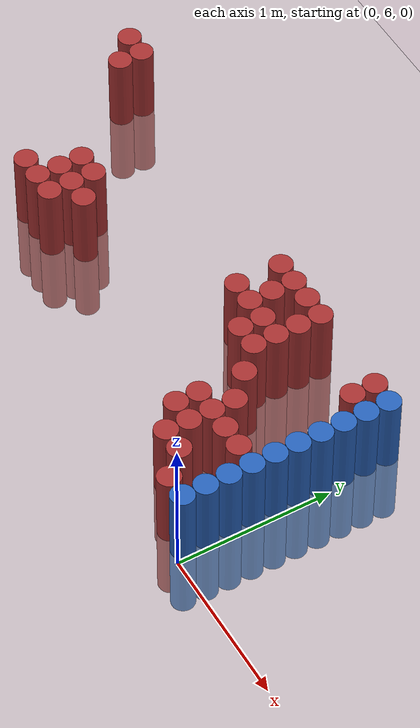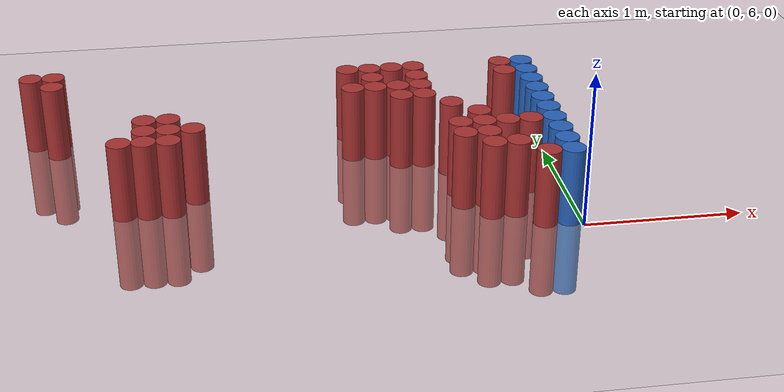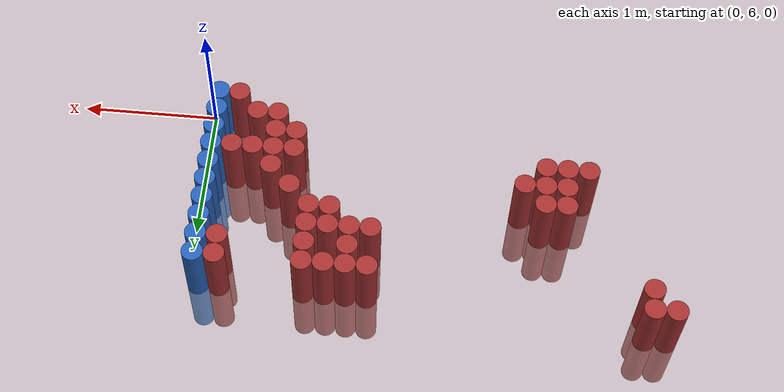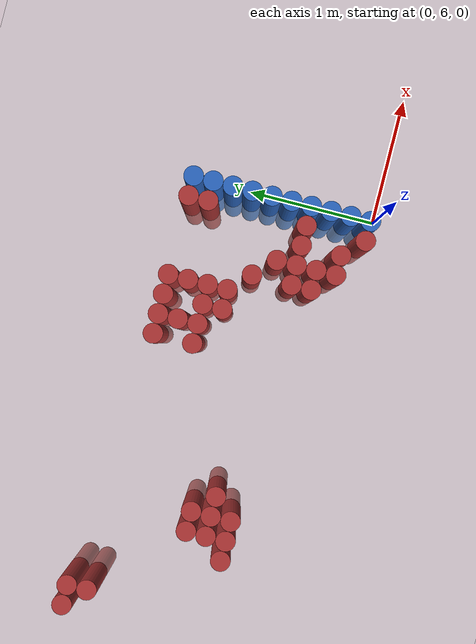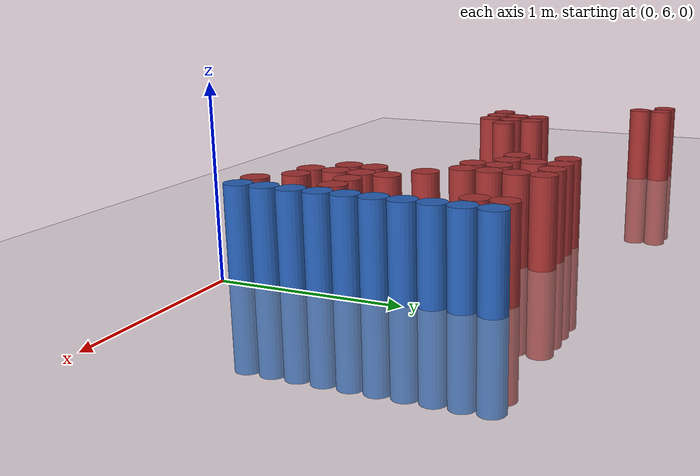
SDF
<sdf version="1.6">
 <world name="default">
  <model name="ground_plane">
   <static>1</static>
   <link name="link">
    <collision name="collision">
     <geometry><plane><normal>0 0 1</normal><size>100 100</size></plane></geometry>
     <surface><friction><ode><mu>100</mu><mu2>50</mu2></ode></friction></surface>
    </collision>
    <visual name="visual">
     <cast_shadows>0</cast_shadows>
     <geometry><plane><normal>0 0 1</normal><size>100 100</size></plane></geometry>
     <material>
      <script><uri>file://media/materials/scripts/gazebo.material</uri><name>Gazebo/Grey</name></script>
     </material>
    </visual>
   </link>
  </model>
  <model name="unit_cylinder_166">
   <static>1</static>
   <pose>-3.375000 7.575000 0.000000 0.000000 0.000000 0.000000</pose>
   <link name="link">
    <inertial>
     <mass>1</mass>
     <inertia><ixx>0.145833</ixx><ixy>0</ixy><ixz>0</ixz><iyy>0.145833</iyy><iyz>0</iyz><izz>0.125</izz></inertia>
    </inertial>
    <collision name="collision">
     <geometry><cylinder><radius>0.075000</radius><length>1</length></cylinder></geometry>
    </collision>
    <visual name="visual">
     <geometry><cylinder><radius>0.075000</radius><length>1</length></cylinder></geometry>
     <material>
      <ambient>0.648000 0.192000 0.192000 1</ambient>
      <diffuse>0.648000 0.192000 0.192000 1</diffuse>
     </material>
     <material>
      <script><name>Gazebo/Grey</name><uri>file://media/materials/scripts/gazebo.material</uri></script>
     </material>
    </visual>
   </link>
  </model>
  <model name="unit_cylinder_172">
   <static>1</static>
   <pose>-3.225000 7.425000 0.000000 0.000000 0.000000 0.000000</pose>
   <link name="link">
    <inertial>
     <mass>1</mass>
     <inertia><ixx>0.145833</ixx><ixy>0</ixy><ixz>0</ixz><iyy>0.145833</iyy><iyz>0</iyz><izz>0.125</izz></inertia>
    </inertial>
    <collision name="collision">
     <geometry><cylinder><radius>0.075000</radius><length>1</length></cylinder></geometry>
    </collision>
    <visual name="visual">
     <geometry><cylinder><radius>0.075000</radius><length>1</length></cylinder></geometry>
     <material>
      <ambient>0.648000 0.192000 0.192000 1</ambient>
      <diffuse>0.648000 0.192000 0.192000 1</diffuse>
     </material>
     <material>
      <script><name>Gazebo/Grey</name><uri>file://media/materials/scripts/gazebo.material</uri></script>
     </material>
    </visual>
   </link>
  </model>
  <model name="unit_cylinder_173">
   <static>1</static>
   <pose>-3.225000 7.575000 0.000000 0.000000 0.000000 0.000000</pose>
   <link name="link">
    <inertial>
     <mass>1</mass>
     <inertia><ixx>0.145833</ixx><ixy>0</ixy><ixz>0</ixz><iyy>0.145833</iyy><iyz>0</iyz><izz>0.125</izz></inertia>
    </inertial>
    <collision name="collision">
     <geometry><cylinder><radius>0.075000</radius><length>1</length></cylinder></geometry>
    </collision>
    <visual name="visual">
     <geometry><cylinder><radius>0.075000</radius><length>1</length></cylinder></geometry>
     <material>
      <ambient>0.648000 0.192000 0.192000 1</ambient>
      <diffuse>0.648000 0.192000 0.192000 1</diffuse>
     </material>
     <material>
      <script><name>Gazebo/Grey</name><uri>file://media/materials/scripts/gazebo.material</uri></script>
     </material>
    </visual>
   </link>
  </model>
  <model name="unit_cylinder_184">
   <static>1</static>
   <pose>-2.775000 6.525000 0.000000 0.000000 0.000000 0.000000</pose>
   <link name="link">
    <inertial>
     <mass>1</mass>
     <inertia><ixx>0.145833</ixx><ixy>0</ixy><ixz>0</ixz><iyy>0.145833</iyy><iyz>0</iyz><izz>0.125</izz></inertia>
    </inertial>
    <collision name="collision">
     <geometry><cylinder><radius>0.075000</radius><length>1</length></cylinder></geometry>
    </collision>
    <visual name="visual">
     <geometry><cylinder><radius>0.075000</radius><length>1</length></cylinder></geometry>
     <material>
      <ambient>0.648000 0.192000 0.192000 1</ambient>
      <diffuse>0.648000 0.192000 0.192000 1</diffuse>
     </material>
     <material>
      <script><name>Gazebo/Grey</name><uri>file://media/materials/scripts/gazebo.material</uri></script>
     </material>
    </visual>
   </link>
  </model>
  <model name="unit_cylinder_188">
   <static>1</static>
   <pose>-2.625000 6.525000 0.000000 0.000000 0.000000 0.000000</pose>
   <link name="link">
    <inertial>
     <mass>1</mass>
     <inertia><ixx>0.145833</ixx><ixy>0</ixy><ixz>0</ixz><iyy>0.145833</iyy><iyz>0</iyz><izz>0.125</izz></inertia>
    </inertial>
    <collision name="collision">
     <geometry><cylinder><radius>0.075000</radius><length>1</length></cylinder></geometry>
    </collision>
    <visual name="visual">
     <geometry><cylinder><radius>0.075000</radius><length>1</length></cylinder></geometry>
     <material>
      <ambient>0.648000 0.192000 0.192000 1</ambient>
      <diffuse>0.648000 0.192000 0.192000 1</diffuse>
     </material>
     <material>
      <script><name>Gazebo/Grey</name><uri>file://media/materials/scripts/gazebo.material</uri></script>
     </material>
    </visual>
   </link>
  </model>
  <model name="unit_cylinder_189">
   <static>1</static>
   <pose>-2.625000 6.675000 0.000000 0.000000 0.000000 0.000000</pose>
   <link name="link">
    <inertial>
     <mass>1</mass>
     <inertia><ixx>0.145833</ixx><ixy>0</ixy><ixz>0</ixz><iyy>0.145833</iyy><iyz>0</iyz><izz>0.125</izz></inertia>
    </inertial>
    <collision name="collision">
     <geometry><cylinder><radius>0.075000</radius><length>1</length></cylinder></geometry>
    </collision>
    <visual name="visual">
     <geometry><cylinder><radius>0.075000</radius><length>1</length></cylinder></geometry>
     <material>
      <ambient>0.648000 0.192000 0.192000 1</ambient>
      <diffuse>0.648000 0.192000 0.192000 1</diffuse>
     </material>
     <material>
      <script><name>Gazebo/Grey</name><uri>file://media/materials/scripts/gazebo.material</uri></script>
     </material>
    </visual>
   </link>
  </model>
  <model name="unit_cylinder_190">
   <static>1</static>
   <pose>-2.625000 6.825000 0.000000 0.000000 0.000000 0.000000</pose>
   <link name="link">
    <inertial>
     <mass>1</mass>
     <inertia><ixx>0.145833</ixx><ixy>0</ixy><ixz>0</ixz><iyy>0.145833</iyy><iyz>0</iyz><izz>0.125</izz></inertia>
    </inertial>
    <collision name="collision">
     <geometry><cylinder><radius>0.075000</radius><length>1</length></cylinder></geometry>
    </collision>
    <visual name="visual">
     <geometry><cylinder><radius>0.075000</radius><length>1</length></cylinder></geometry>
     <material>
      <ambient>0.648000 0.192000 0.192000 1</ambient>
      <diffuse>0.648000 0.192000 0.192000 1</diffuse>
     </material>
     <material>
      <script><name>Gazebo/Grey</name><uri>file://media/materials/scripts/gazebo.material</uri></script>
     </material>
    </visual>
   </link>
  </model>
  <model name="unit_cylinder_195">
   <static>1</static>
   <pose>-2.475000 6.525000 0.000000 0.000000 0.000000 0.000000</pose>
   <link name="link">
    <inertial>
     <mass>1</mass>
     <inertia><ixx>0.145833</ixx><ixy>0</ixy><ixz>0</ixz><iyy>0.145833</iyy><iyz>0</iyz><izz>0.125</izz></inertia>
    </inertial>
    <collision name="collision">
     <geometry><cylinder><radius>0.075000</radius><length>1</length></cylinder></geometry>
    </collision>
    <visual name="visual">
     <geometry><cylinder><radius>0.075000</radius><length>1</length></cylinder></geometry>
     <material>
      <ambient>0.648000 0.192000 0.192000 1</ambient>
      <diffuse>0.648000 0.192000 0.192000 1</diffuse>
     </material>
     <material>
      <script><name>Gazebo/Grey</name><uri>file://media/materials/scripts/gazebo.material</uri></script>
     </material>
    </visual>
   </link>
  </model>
  <model name="unit_cylinder_196">
   <static>1</static>
   <pose>-2.475000 6.675000 0.000000 0.000000 0.000000 0.000000</pose>
   <link name="link">
    <inertial>
     <mass>1</mass>
     <inertia><ixx>0.145833</ixx><ixy>0</ixy><ixz>0</ixz><iyy>0.145833</iyy><iyz>0</iyz><izz>0.125</izz></inertia>
    </inertial>
    <collision name="collision">
     <geometry><cylinder><radius>0.075000</radius><length>1</length></cylinder></geometry>
    </collision>
    <visual name="visual">
     <geometry><cylinder><radius>0.075000</radius><length>1</length></cylinder></geometry>
     <material>
      <ambient>0.648000 0.192000 0.192000 1</ambient>
      <diffuse>0.648000 0.192000 0.192000 1</diffuse>
     </material>
     <material>
      <script><name>Gazebo/Grey</name><uri>file://media/materials/scripts/gazebo.material</uri></script>
     </material>
    </visual>
   </link>
  </model>
  <model name="unit_cylinder_197">
   <static>1</static>
   <pose>-2.475000 6.825000 0.000000 0.000000 0.000000 0.000000</pose>
   <link name="link">
    <inertial>
     <mass>1</mass>
     <inertia><ixx>0.145833</ixx><ixy>0</ixy><ixz>0</ixz><iyy>0.145833</iyy><iyz>0</iyz><izz>0.125</izz></inertia>
    </inertial>
    <collision name="collision">
     <geometry><cylinder><radius>0.075000</radius><length>1</length></cylinder></geometry>
    </collision>
    <visual name="visual">
     <geometry><cylinder><radius>0.075000</radius><length>1</length></cylinder></geometry>
     <material>
      <ambient>0.648000 0.192000 0.192000 1</ambient>
      <diffuse>0.648000 0.192000 0.192000 1</diffuse>
     </material>
     <material>
      <script><name>Gazebo/Grey</name><uri>file://media/materials/scripts/gazebo.material</uri></script>
     </material>
    </visual>
   </link>
  </model>
  <model name="unit_cylinder_199">
   <static>1</static>
   <pose>-2.325000 6.675000 0.000000 0.000000 0.000000 0.000000</pose>
   <link name="link">
    <inertial>
     <mass>1</mass>
     <inertia><ixx>0.145833</ixx><ixy>0</ixy><ixz>0</ixz><iyy>0.145833</iyy><iyz>0</iyz><izz>0.125</izz></inertia>
    </inertial>
    <collision name="collision">
     <geometry><cylinder><radius>0.075000</radius><length>1</length></cylinder></geometry>
    </collision>
    <visual name="visual">
     <geometry><cylinder><radius>0.075000</radius><length>1</length></cylinder></geometry>
     <material>
      <ambient>0.648000 0.192000 0.192000 1</ambient>
      <diffuse>0.648000 0.192000 0.192000 1</diffuse>
     </material>
     <material>
      <script><name>Gazebo/Grey</name><uri>file://media/materials/scripts/gazebo.material</uri></script>
     </material>
    </visual>
   </link>
  </model>
  <model name="unit_cylinder_212">
   <static>1</static>
   <pose>-1.275000 7.125000 0.000000 0.000000 0.000000 0.000000</pose>
   <link name="link">
    <inertial>
     <mass>1</mass>
     <inertia><ixx>0.145833</ixx><ixy>0</ixy><ixz>0</ixz><iyy>0.145833</iyy><iyz>0</iyz><izz>0.125</izz></inertia>
    </inertial>
    <collision name="collision">
     <geometry><cylinder><radius>0.075000</radius><length>1</length></cylinder></geometry>
    </collision>
    <visual name="visual">
     <geometry><cylinder><radius>0.075000</radius><length>1</length></cylinder></geometry>
     <material>
      <ambient>0.648000 0.192000 0.192000 1</ambient>
      <diffuse>0.648000 0.192000 0.192000 1</diffuse>
     </material>
     <material>
      <script><name>Gazebo/Grey</name><uri>file://media/materials/scripts/gazebo.material</uri></script>
     </material>
    </visual>
   </link>
  </model>
  <model name="unit_cylinder_213">
   <static>1</static>
   <pose>-1.275000 7.425000 0.000000 0.000000 0.000000 0.000000</pose>
   <link name="link">
    <inertial>
     <mass>1</mass>
     <inertia><ixx>0.145833</ixx><ixy>0</ixy><ixz>0</ixz><iyy>0.145833</iyy><iyz>0</iyz><izz>0.125</izz></inertia>
    </inertial>
    <collision name="collision">
     <geometry><cylinder><radius>0.075000</radius><length>1</length></cylinder></geometry>
    </collision>
    <visual name="visual">
     <geometry><cylinder><radius>0.075000</radius><length>1</length></cylinder></geometry>
     <material>
      <ambient>0.648000 0.192000 0.192000 1</ambient>
      <diffuse>0.648000 0.192000 0.192000 1</diffuse>
     </material>
     <material>
      <script><name>Gazebo/Grey</name><uri>file://media/materials/scripts/gazebo.material</uri></script>
     </material>
    </visual>
   </link>
  </model>
  <model name="unit_cylinder_214">
   <static>1</static>
   <pose>-1.125000 7.125000 0.000000 0.000000 0.000000 0.000000</pose>
   <link name="link">
    <inertial>
     <mass>1</mass>
     <inertia><ixx>0.145833</ixx><ixy>0</ixy><ixz>0</ixz><iyy>0.145833</iyy><iyz>0</iyz><izz>0.125</izz></inertia>
    </inertial>
    <collision name="collision">
     <geometry><cylinder><radius>0.075000</radius><length>1</length></cylinder></geometry>
    </collision>
    <visual name="visual">
     <geometry><cylinder><radius>0.075000</radius><length>1</length></cylinder></geometry>
     <material>
      <ambient>0.648000 0.192000 0.192000 1</ambient>
      <diffuse>0.648000 0.192000 0.192000 1</diffuse>
     </material>
     <material>
      <script><name>Gazebo/Grey</name><uri>file://media/materials/scripts/gazebo.material</uri></script>
     </material>
    </visual>
   </link>
  </model>
  <model name="unit_cylinder_215">
   <static>1</static>
   <pose>-1.125000 7.275000 0.000000 0.000000 0.000000 0.000000</pose>
   <link name="link">
    <inertial>
     <mass>1</mass>
     <inertia><ixx>0.145833</ixx><ixy>0</ixy><ixz>0</ixz><iyy>0.145833</iyy><iyz>0</iyz><izz>0.125</izz></inertia>
    </inertial>
    <collision name="collision">
     <geometry><cylinder><radius>0.075000</radius><length>1</length></cylinder></geometry>
    </collision>
    <visual name="visual">
     <geometry><cylinder><radius>0.075000</radius><length>1</length></cylinder></geometry>
     <material>
      <ambient>0.648000 0.192000 0.192000 1</ambient>
      <diffuse>0.648000 0.192000 0.192000 1</diffuse>
     </material>
     <material>
      <script><name>Gazebo/Grey</name><uri>file://media/materials/scripts/gazebo.material</uri></script>
     </material>
    </visual>
   </link>
  </model>
  <model name="unit_cylinder_216">
   <static>1</static>
   <pose>-1.125000 7.425000 0.000000 0.000000 0.000000 0.000000</pose>
   <link name="link">
    <inertial>
     <mass>1</mass>
     <inertia><ixx>0.145833</ixx><ixy>0</ixy><ixz>0</ixz><iyy>0.145833</iyy><iyz>0</iyz><izz>0.125</izz></inertia>
    </inertial>
    <collision name="collision">
     <geometry><cylinder><radius>0.075000</radius><length>1</length></cylinder></geometry>
    </collision>
    <visual name="visual">
     <geometry><cylinder><radius>0.075000</radius><length>1</length></cylinder></geometry>
     <material>
      <ambient>0.648000 0.192000 0.192000 1</ambient>
      <diffuse>0.648000 0.192000 0.192000 1</diffuse>
     </material>
     <material>
      <script><name>Gazebo/Grey</name><uri>file://media/materials/scripts/gazebo.material</uri></script>
     </material>
    </visual>
   </link>
  </model>
  <model name="unit_cylinder_218">
   <static>1</static>
   <pose>-0.975000 6.975000 0.000000 0.000000 0.000000 0.000000</pose>
   <link name="link">
    <inertial>
     <mass>1</mass>
     <inertia><ixx>0.145833</ixx><ixy>0</ixy><ixz>0</ixz><iyy>0.145833</iyy><iyz>0</iyz><izz>0.125</izz></inertia>
    </inertial>
    <collision name="collision">
     <geometry><cylinder><radius>0.075000</radius><length>1</length></cylinder></geometry>
    </collision>
    <visual name="visual">
     <geometry><cylinder><radius>0.075000</radius><length>1</length></cylinder></geometry>
     <material>
      <ambient>0.648000 0.192000 0.192000 1</ambient>
      <diffuse>0.648000 0.192000 0.192000 1</diffuse>
     </material>
     <material>
      <script><name>Gazebo/Grey</name><uri>file://media/materials/scripts/gazebo.material</uri></script>
     </material>
    </visual>
   </link>
  </model>
  <model name="unit_cylinder_219">
   <static>1</static>
   <pose>-0.975000 7.125000 0.000000 0.000000 0.000000 0.000000</pose>
   <link name="link">
    <inertial>
     <mass>1</mass>
     <inertia><ixx>0.145833</ixx><ixy>0</ixy><ixz>0</ixz><iyy>0.145833</iyy><iyz>0</iyz><izz>0.125</izz></inertia>
    </inertial>
    <collision name="collision">
     <geometry><cylinder><radius>0.075000</radius><length>1</length></cylinder></geometry>
    </collision>
    <visual name="visual">
     <geometry><cylinder><radius>0.075000</radius><length>1</length></cylinder></geometry>
     <material>
      <ambient>0.648000 0.192000 0.192000 1</ambient>
      <diffuse>0.648000 0.192000 0.192000 1</diffuse>
     </material>
     <material>
      <script><name>Gazebo/Grey</name><uri>file://media/materials/scripts/gazebo.material</uri></script>
     </material>
    </visual>
   </link>
  </model>
  <model name="unit_cylinder_220">
   <static>1</static>
   <pose>-0.975000 7.425000 0.000000 0.000000 0.000000 0.000000</pose>
   <link name="link">
    <inertial>
     <mass>1</mass>
     <inertia><ixx>0.145833</ixx><ixy>0</ixy><ixz>0</ixz><iyy>0.145833</iyy><iyz>0</iyz><izz>0.125</izz></inertia>
    </inertial>
    <collision name="collision">
     <geometry><cylinder><radius>0.075000</radius><length>1</length></cylinder></geometry>
    </collision>
    <visual name="visual">
     <geometry><cylinder><radius>0.075000</radius><length>1</length></cylinder></geometry>
     <material>
      <ambient>0.648000 0.192000 0.192000 1</ambient>
      <diffuse>0.648000 0.192000 0.192000 1</diffuse>
     </material>
     <material>
      <script><name>Gazebo/Grey</name><uri>file://media/materials/scripts/gazebo.material</uri></script>
     </material>
    </visual>
   </link>
  </model>
  <model name="unit_cylinder_221">
   <static>1</static>
   <pose>-0.825000 6.975000 0.000000 0.000000 0.000000 0.000000</pose>
   <link name="link">
    <inertial>
     <mass>1</mass>
     <inertia><ixx>0.145833</ixx><ixy>0</ixy><ixz>0</ixz><iyy>0.145833</iyy><iyz>0</iyz><izz>0.125</izz></inertia>
    </inertial>
    <collision name="collision">
     <geometry><cylinder><radius>0.075000</radius><length>1</length></cylinder></geometry>
    </collision>
    <visual name="visual">
     <geometry><cylinder><radius>0.075000</radius><length>1</length></cylinder></geometry>
     <material>
      <ambient>0.648000 0.192000 0.192000 1</ambient>
      <diffuse>0.648000 0.192000 0.192000 1</diffuse>
     </material>
     <material>
      <script><name>Gazebo/Grey</name><uri>file://media/materials/scripts/gazebo.material</uri></script>
     </material>
    </visual>
   </link>
  </model>
  <model name="unit_cylinder_222">
   <static>1</static>
   <pose>-0.825000 7.125000 0.000000 0.000000 0.000000 0.000000</pose>
   <link name="link">
    <inertial>
     <mass>1</mass>
     <inertia><ixx>0.145833</ixx><ixy>0</ixy><ixz>0</ixz><iyy>0.145833</iyy><iyz>0</iyz><izz>0.125</izz></inertia>
    </inertial>
    <collision name="collision">
     <geometry><cylinder><radius>0.075000</radius><length>1</length></cylinder></geometry>
    </collision>
    <visual name="visual">
     <geometry><cylinder><radius>0.075000</radius><length>1</length></cylinder></geometry>
     <material>
      <ambient>0.648000 0.192000 0.192000 1</ambient>
      <diffuse>0.648000 0.192000 0.192000 1</diffuse>
     </material>
     <material>
      <script><name>Gazebo/Grey</name><uri>file://media/materials/scripts/gazebo.material</uri></script>
     </material>
    </visual>
   </link>
  </model>
  <model name="unit_cylinder_223">
   <static>1</static>
   <pose>-0.825000 7.275000 0.000000 0.000000 0.000000 0.000000</pose>
   <link name="link">
    <inertial>
     <mass>1</mass>
     <inertia><ixx>0.145833</ixx><ixy>0</ixy><ixz>0</ixz><iyy>0.145833</iyy><iyz>0</iyz><izz>0.125</izz></inertia>
    </inertial>
    <collision name="collision">
     <geometry><cylinder><radius>0.075000</radius><length>1</length></cylinder></geometry>
    </collision>
    <visual name="visual">
     <geometry><cylinder><radius>0.075000</radius><length>1</length></cylinder></geometry>
     <material>
      <ambient>0.648000 0.192000 0.192000 1</ambient>
      <diffuse>0.648000 0.192000 0.192000 1</diffuse>
     </material>
     <material>
      <script><name>Gazebo/Grey</name><uri>file://media/materials/scripts/gazebo.material</uri></script>
     </material>
    </visual>
   </link>
  </model>
  <model name="unit_cylinder_224">
   <static>1</static>
   <pose>-0.825000 7.425000 0.000000 0.000000 0.000000 0.000000</pose>
   <link name="link">
    <inertial>
     <mass>1</mass>
     <inertia><ixx>0.145833</ixx><ixy>0</ixy><ixz>0</ixz><iyy>0.145833</iyy><iyz>0</iyz><izz>0.125</izz></inertia>
    </inertial>
    <collision name="collision">
     <geometry><cylinder><radius>0.075000</radius><length>1</length></cylinder></geometry>
    </collision>
    <visual name="visual">
     <geometry><cylinder><radius>0.075000</radius><length>1</length></cylinder></geometry>
     <material>
      <ambient>0.648000 0.192000 0.192000 1</ambient>
      <diffuse>0.648000 0.192000 0.192000 1</diffuse>
     </material>
     <material>
      <script><name>Gazebo/Grey</name><uri>file://media/materials/scripts/gazebo.material</uri></script>
     </material>
    </visual>
   </link>
  </model>
  <model name="unit_cylinder_226">
   <static>1</static>
   <pose>-0.675000 6.375000 0.000000 0.000000 0.000000 0.000000</pose>
   <link name="link">
    <inertial>
     <mass>1</mass>
     <inertia><ixx>0.145833</ixx><ixy>0</ixy><ixz>0</ixz><iyy>0.145833</iyy><iyz>0</iyz><izz>0.125</izz></inertia>
    </inertial>
    <collision name="collision">
     <geometry><cylinder><radius>0.075000</radius><length>1</length></cylinder></geometry>
    </collision>
    <visual name="visual">
     <geometry><cylinder><radius>0.075000</radius><length>1</length></cylinder></geometry>
     <material>
      <ambient>0.648000 0.192000 0.192000 1</ambient>
      <diffuse>0.648000 0.192000 0.192000 1</diffuse>
     </material>
     <material>
      <script><name>Gazebo/Grey</name><uri>file://media/materials/scripts/gazebo.material</uri></script>
     </material>
    </visual>
   </link>
  </model>
  <model name="unit_cylinder_227">
   <static>1</static>
   <pose>-0.675000 6.525000 0.000000 0.000000 0.000000 0.000000</pose>
   <link name="link">
    <inertial>
     <mass>1</mass>
     <inertia><ixx>0.145833</ixx><ixy>0</ixy><ixz>0</ixz><iyy>0.145833</iyy><iyz>0</iyz><izz>0.125</izz></inertia>
    </inertial>
    <collision name="collision">
     <geometry><cylinder><radius>0.075000</radius><length>1</length></cylinder></geometry>
    </collision>
    <visual name="visual">
     <geometry><cylinder><radius>0.075000</radius><length>1</length></cylinder></geometry>
     <material>
      <ambient>0.648000 0.192000 0.192000 1</ambient>
      <diffuse>0.648000 0.192000 0.192000 1</diffuse>
     </material>
     <material>
      <script><name>Gazebo/Grey</name><uri>file://media/materials/scripts/gazebo.material</uri></script>
     </material>
    </visual>
   </link>
  </model>
  <model name="unit_cylinder_228">
   <static>1</static>
   <pose>-0.675000 6.825000 0.000000 0.000000 0.000000 0.000000</pose>
   <link name="link">
    <inertial>
     <mass>1</mass>
     <inertia><ixx>0.145833</ixx><ixy>0</ixy><ixz>0</ixz><iyy>0.145833</iyy><iyz>0</iyz><izz>0.125</izz></inertia>
    </inertial>
    <collision name="collision">
     <geometry><cylinder><radius>0.075000</radius><length>1</length></cylinder></geometry>
    </collision>
    <visual name="visual">
     <geometry><cylinder><radius>0.075000</radius><length>1</length></cylinder></geometry>
     <material>
      <ambient>0.648000 0.192000 0.192000 1</ambient>
      <diffuse>0.648000 0.192000 0.192000 1</diffuse>
     </material>
     <material>
      <script><name>Gazebo/Grey</name><uri>file://media/materials/scripts/gazebo.material</uri></script>
     </material>
    </visual>
   </link>
  </model>
  <model name="unit_cylinder_229">
   <static>1</static>
   <pose>-0.525000 6.225000 0.000000 0.000000 0.000000 0.000000</pose>
   <link name="link">
    <inertial>
     <mass>1</mass>
     <inertia><ixx>0.145833</ixx><ixy>0</ixy><ixz>0</ixz><iyy>0.145833</iyy><iyz>0</iyz><izz>0.125</izz></inertia>
    </inertial>
    <collision name="collision">
     <geometry><cylinder><radius>0.075000</radius><length>1</length></cylinder></geometry>
    </collision>
    <visual name="visual">
     <geometry><cylinder><radius>0.075000</radius><length>1</length></cylinder></geometry>
     <material>
      <ambient>0.648000 0.192000 0.192000 1</ambient>
      <diffuse>0.648000 0.192000 0.192000 1</diffuse>
     </material>
     <material>
      <script><name>Gazebo/Grey</name><uri>file://media/materials/scripts/gazebo.material</uri></script>
     </material>
    </visual>
   </link>
  </model>
  <model name="unit_cylinder_230">
   <static>1</static>
   <pose>-0.525000 6.375000 0.000000 0.000000 0.000000 0.000000</pose>
   <link name="link">
    <inertial>
     <mass>1</mass>
     <inertia><ixx>0.145833</ixx><ixy>0</ixy><ixz>0</ixz><iyy>0.145833</iyy><iyz>0</iyz><izz>0.125</izz></inertia>
    </inertial>
    <collision name="collision">
     <geometry><cylinder><radius>0.075000</radius><length>1</length></cylinder></geometry>
    </collision>
    <visual name="visual">
     <geometry><cylinder><radius>0.075000</radius><length>1</length></cylinder></geometry>
     <material>
      <ambient>0.648000 0.192000 0.192000 1</ambient>
      <diffuse>0.648000 0.192000 0.192000 1</diffuse>
     </material>
     <material>
      <script><name>Gazebo/Grey</name><uri>file://media/materials/scripts/gazebo.material</uri></script>
     </material>
    </visual>
   </link>
  </model>
  <model name="unit_cylinder_231">
   <static>1</static>
   <pose>-0.525000 6.525000 0.000000 0.000000 0.000000 0.000000</pose>
   <link name="link">
    <inertial>
     <mass>1</mass>
     <inertia><ixx>0.145833</ixx><ixy>0</ixy><ixz>0</ixz><iyy>0.145833</iyy><iyz>0</iyz><izz>0.125</izz></inertia>
    </inertial>
    <collision name="collision">
     <geometry><cylinder><radius>0.075000</radius><length>1</length></cylinder></geometry>
    </collision>
    <visual name="visual">
     <geometry><cylinder><radius>0.075000</radius><length>1</length></cylinder></geometry>
     <material>
      <ambient>0.648000 0.192000 0.192000 1</ambient>
      <diffuse>0.648000 0.192000 0.192000 1</diffuse>
     </material>
     <material>
      <script><name>Gazebo/Grey</name><uri>file://media/materials/scripts/gazebo.material</uri></script>
     </material>
    </visual>
   </link>
  </model>
  <model name="unit_cylinder_232">
   <static>1</static>
   <pose>-0.525000 6.675000 0.000000 0.000000 0.000000 0.000000</pose>
   <link name="link">
    <inertial>
     <mass>1</mass>
     <inertia><ixx>0.145833</ixx><ixy>0</ixy><ixz>0</ixz><iyy>0.145833</iyy><iyz>0</iyz><izz>0.125</izz></inertia>
    </inertial>
    <collision name="collision">
     <geometry><cylinder><radius>0.075000</radius><length>1</length></cylinder></geometry>
    </collision>
    <visual name="visual">
     <geometry><cylinder><radius>0.075000</radius><length>1</length></cylinder></geometry>
     <material>
      <ambient>0.648000 0.192000 0.192000 1</ambient>
      <diffuse>0.648000 0.192000 0.192000 1</diffuse>
     </material>
     <material>
      <script><name>Gazebo/Grey</name><uri>file://media/materials/scripts/gazebo.material</uri></script>
     </material>
    </visual>
   </link>
  </model>
  <model name="unit_cylinder_234">
   <static>1</static>
   <pose>-0.375000 6.225000 0.000000 0.000000 0.000000 0.000000</pose>
   <link name="link">
    <inertial>
     <mass>1</mass>
     <inertia><ixx>0.145833</ixx><ixy>0</ixy><ixz>0</ixz><iyy>0.145833</iyy><iyz>0</iyz><izz>0.125</izz></inertia>
    </inertial>
    <collision name="collision">
     <geometry><cylinder><radius>0.075000</radius><length>1</length></cylinder></geometry>
    </collision>
    <visual name="visual">
     <geometry><cylinder><radius>0.075000</radius><length>1</length></cylinder></geometry>
     <material>
      <ambient>0.648000 0.192000 0.192000 1</ambient>
      <diffuse>0.648000 0.192000 0.192000 1</diffuse>
     </material>
     <material>
      <script><name>Gazebo/Grey</name><uri>file://media/materials/scripts/gazebo.material</uri></script>
     </material>
    </visual>
   </link>
  </model>
  <model name="unit_cylinder_235">
   <static>1</static>
   <pose>-0.375000 6.525000 0.000000 0.000000 0.000000 0.000000</pose>
   <link name="link">
    <inertial>
     <mass>1</mass>
     <inertia><ixx>0.145833</ixx><ixy>0</ixy><ixz>0</ixz><iyy>0.145833</iyy><iyz>0</iyz><izz>0.125</izz></inertia>
    </inertial>
    <collision name="collision">
     <geometry><cylinder><radius>0.075000</radius><length>1</length></cylinder></geometry>
    </collision>
    <visual name="visual">
     <geometry><cylinder><radius>0.075000</radius><length>1</length></cylinder></geometry>
     <material>
      <ambient>0.648000 0.192000 0.192000 1</ambient>
      <diffuse>0.648000 0.192000 0.192000 1</diffuse>
     </material>
     <material>
      <script><name>Gazebo/Grey</name><uri>file://media/materials/scripts/gazebo.material</uri></script>
     </material>
    </visual>
   </link>
  </model>
  <model name="unit_cylinder_240">
   <static>1</static>
   <pose>-0.225000 6.075000 0.000000 0.000000 0.000000 0.000000</pose>
   <link name="link">
    <inertial>
     <mass>1</mass>
     <inertia><ixx>0.145833</ixx><ixy>0</ixy><ixz>0</ixz><iyy>0.145833</iyy><iyz>0</iyz><izz>0.125</izz></inertia>
    </inertial>
    <collision name="collision">
     <geometry><cylinder><radius>0.075000</radius><length>1</length></cylinder></geometry>
    </collision>
    <visual name="visual">
     <geometry><cylinder><radius>0.075000</radius><length>1</length></cylinder></geometry>
     <material>
      <ambient>0.648000 0.192000 0.192000 1</ambient>
      <diffuse>0.648000 0.192000 0.192000 1</diffuse>
     </material>
     <material>
      <script><name>Gazebo/Grey</name><uri>file://media/materials/scripts/gazebo.material</uri></script>
     </material>
    </visual>
   </link>
  </model>
  <model name="unit_cylinder_241">
   <static>1</static>
   <pose>-0.225000 6.525000 0.000000 0.000000 0.000000 0.000000</pose>
   <link name="link">
    <inertial>
     <mass>1</mass>
     <inertia><ixx>0.145833</ixx><ixy>0</ixy><ixz>0</ixz><iyy>0.145833</iyy><iyz>0</iyz><izz>0.125</izz></inertia>
    </inertial>
    <collision name="collision">
     <geometry><cylinder><radius>0.075000</radius><length>1</length></cylinder></geometry>
    </collision>
    <visual name="visual">
     <geometry><cylinder><radius>0.075000</radius><length>1</length></cylinder></geometry>
     <material>
      <ambient>0.648000 0.192000 0.192000 1</ambient>
      <diffuse>0.648000 0.192000 0.192000 1</diffuse>
     </material>
     <material>
      <script><name>Gazebo/Grey</name><uri>file://media/materials/scripts/gazebo.material</uri></script>
     </material>
    </visual>
   </link>
  </model>
  <model name="unit_cylinder_242">
   <static>1</static>
   <pose>-0.225000 7.275000 0.000000 0.000000 0.000000 0.000000</pose>
   <link name="link">
    <inertial>
     <mass>1</mass>
     <inertia><ixx>0.145833</ixx><ixy>0</ixy><ixz>0</ixz><iyy>0.145833</iyy><iyz>0</iyz><izz>0.125</izz></inertia>
    </inertial>
    <collision name="collision">
     <geometry><cylinder><radius>0.075000</radius><length>1</length></cylinder></geometry>
    </collision>
    <visual name="visual">
     <geometry><cylinder><radius>0.075000</radius><length>1</length></cylinder></geometry>
     <material>
      <ambient>0.648000 0.192000 0.192000 1</ambient>
      <diffuse>0.648000 0.192000 0.192000 1</diffuse>
     </material>
     <material>
      <script><name>Gazebo/Grey</name><uri>file://media/materials/scripts/gazebo.material</uri></script>
     </material>
    </visual>
   </link>
  </model>
  <model name="unit_cylinder_243">
   <static>1</static>
   <pose>-0.225000 7.425000 0.000000 0.000000 0.000000 0.000000</pose>
   <link name="link">
    <inertial>
     <mass>1</mass>
     <inertia><ixx>0.145833</ixx><ixy>0</ixy><ixz>0</ixz><iyy>0.145833</iyy><iyz>0</iyz><izz>0.125</izz></inertia>
    </inertial>
    <collision name="collision">
     <geometry><cylinder><radius>0.075000</radius><length>1</length></cylinder></geometry>
    </collision>
    <visual name="visual">
     <geometry><cylinder><radius>0.075000</radius><length>1</length></cylinder></geometry>
     <material>
      <ambient>0.648000 0.192000 0.192000 1</ambient>
      <diffuse>0.648000 0.192000 0.192000 1</diffuse>
     </material>
     <material>
      <script><name>Gazebo/Grey</name><uri>file://media/materials/scripts/gazebo.material</uri></script>
     </material>
    </visual>
   </link>
  </model>
  <model name="unit_cylinder_253">
   <static>1</static>
   <pose>-0.075000 6.075000 0.000000 0.000000 0.000000 0.000000</pose>
   <link name="link">
    <inertial>
     <mass>1</mass>
     <inertia><ixx>0.145833</ixx><ixy>0</ixy><ixz>0</ixz><iyy>0.145833</iyy><iyz>0</iyz><izz>0.125</izz></inertia>
    </inertial>
    <collision name="collision">
     <geometry><cylinder><radius>0.075000</radius><length>1</length></cylinder></geometry>
    </collision>
    <visual name="visual">
     <geometry><cylinder><radius>0.075000</radius><length>1</length></cylinder></geometry>
     <material>
      <ambient>0.152000 0.379000 0.720000 1</ambient>
      <diffuse>0.152000 0.379000 0.720000 1</diffuse>
     </material>
     <material>
      <script><name>Gazebo/Grey</name><uri>file://media/materials/scripts/gazebo.material</uri></script>
     </material>
    </visual>
   </link>
  </model>
  <model name="unit_cylinder_254">
   <static>1</static>
   <pose>-0.075000 6.225000 0.000000 0.000000 0.000000 0.000000</pose>
   <link name="link">
    <inertial>
     <mass>1</mass>
     <inertia><ixx>0.145833</ixx><ixy>0</ixy><ixz>0</ixz><iyy>0.145833</iyy><iyz>0</iyz><izz>0.125</izz></inertia>
    </inertial>
    <collision name="collision">
     <geometry><cylinder><radius>0.075000</radius><length>1</length></cylinder></geometry>
    </collision>
    <visual name="visual">
     <geometry><cylinder><radius>0.075000</radius><length>1</length></cylinder></geometry>
     <material>
      <ambient>0.152000 0.379000 0.720000 1</ambient>
      <diffuse>0.152000 0.379000 0.720000 1</diffuse>
     </material>
     <material>
      <script><name>Gazebo/Grey</name><uri>file://media/materials/scripts/gazebo.material</uri></script>
     </material>
    </visual>
   </link>
  </model>
  <model name="unit_cylinder_255">
   <static>1</static>
   <pose>-0.075000 6.375000 0.000000 0.000000 0.000000 0.000000</pose>
   <link name="link">
    <inertial>
     <mass>1</mass>
     <inertia><ixx>0.145833</ixx><ixy>0</ixy><ixz>0</ixz><iyy>0.145833</iyy><iyz>0</iyz><izz>0.125</izz></inertia>
    </inertial>
    <collision name="collision">
     <geometry><cylinder><radius>0.075000</radius><length>1</length></cylinder></geometry>
    </collision>
    <visual name="visual">
     <geometry><cylinder><radius>0.075000</radius><length>1</length></cylinder></geometry>
     <material>
      <ambient>0.152000 0.379000 0.720000 1</ambient>
      <diffuse>0.152000 0.379000 0.720000 1</diffuse>
     </material>
     <material>
      <script><name>Gazebo/Grey</name><uri>file://media/materials/scripts/gazebo.material</uri></script>
     </material>
    </visual>
   </link>
  </model>
  <model name="unit_cylinder_256">
   <static>1</static>
   <pose>-0.075000 6.525000 0.000000 0.000000 0.000000 0.000000</pose>
   <link name="link">
    <inertial>
     <mass>1</mass>
     <inertia><ixx>0.145833</ixx><ixy>0</ixy><ixz>0</ixz><iyy>0.145833</iyy><iyz>0</iyz><izz>0.125</izz></inertia>
    </inertial>
    <collision name="collision">
     <geometry><cylinder><radius>0.075000</radius><length>1</length></cylinder></geometry>
    </collision>
    <visual name="visual">
     <geometry><cylinder><radius>0.075000</radius><length>1</length></cylinder></geometry>
     <material>
      <ambient>0.152000 0.379000 0.720000 1</ambient>
      <diffuse>0.152000 0.379000 0.720000 1</diffuse>
     </material>
     <material>
      <script><name>Gazebo/Grey</name><uri>file://media/materials/scripts/gazebo.material</uri></script>
     </material>
    </visual>
   </link>
  </model>
  <model name="unit_cylinder_257">
   <static>1</static>
   <pose>-0.075000 6.675000 0.000000 0.000000 0.000000 0.000000</pose>
   <link name="link">
    <inertial>
     <mass>1</mass>
     <inertia><ixx>0.145833</ixx><ixy>0</ixy><ixz>0</ixz><iyy>0.145833</iyy><iyz>0</iyz><izz>0.125</izz></inertia>
    </inertial>
    <collision name="collision">
     <geometry><cylinder><radius>0.075000</radius><length>1</length></cylinder></geometry>
    </collision>
    <visual name="visual">
     <geometry><cylinder><radius>0.075000</radius><length>1</length></cylinder></geometry>
     <material>
      <ambient>0.152000 0.379000 0.720000 1</ambient>
      <diffuse>0.152000 0.379000 0.720000 1</diffuse>
     </material>
     <material>
      <script><name>Gazebo/Grey</name><uri>file://media/materials/scripts/gazebo.material</uri></script>
     </material>
    </visual>
   </link>
  </model>
  <model name="unit_cylinder_258">
   <static>1</static>
   <pose>-0.075000 6.825000 0.000000 0.000000 0.000000 0.000000</pose>
   <link name="link">
    <inertial>
     <mass>1</mass>
     <inertia><ixx>0.145833</ixx><ixy>0</ixy><ixz>0</ixz><iyy>0.145833</iyy><iyz>0</iyz><izz>0.125</izz></inertia>
    </inertial>
    <collision name="collision">
     <geometry><cylinder><radius>0.075000</radius><length>1</length></cylinder></geometry>
    </collision>
    <visual name="visual">
     <geometry><cylinder><radius>0.075000</radius><length>1</length></cylinder></geometry>
     <material>
      <ambient>0.152000 0.379000 0.720000 1</ambient>
      <diffuse>0.152000 0.379000 0.720000 1</diffuse>
     </material>
     <material>
      <script><name>Gazebo/Grey</name><uri>file://media/materials/scripts/gazebo.material</uri></script>
     </material>
    </visual>
   </link>
  </model>
  <model name="unit_cylinder_259">
   <static>1</static>
   <pose>-0.075000 6.975000 0.000000 0.000000 0.000000 0.000000</pose>
   <link name="link">
    <inertial>
     <mass>1</mass>
     <inertia><ixx>0.145833</ixx><ixy>0</ixy><ixz>0</ixz><iyy>0.145833</iyy><iyz>0</iyz><izz>0.125</izz></inertia>
    </inertial>
    <collision name="collision">
     <geometry><cylinder><radius>0.075000</radius><length>1</length></cylinder></geometry>
    </collision>
    <visual name="visual">
     <geometry><cylinder><radius>0.075000</radius><length>1</length></cylinder></geometry>
     <material>
      <ambient>0.152000 0.379000 0.720000 1</ambient>
      <diffuse>0.152000 0.379000 0.720000 1</diffuse>
     </material>
     <material>
      <script><name>Gazebo/Grey</name><uri>file://media/materials/scripts/gazebo.material</uri></script>
     </material>
    </visual>
   </link>
  </model>
  <model name="unit_cylinder_260">
   <static>1</static>
   <pose>-0.075000 7.125000 0.000000 0.000000 0.000000 0.000000</pose>
   <link name="link">
    <inertial>
     <mass>1</mass>
     <inertia><ixx>0.145833</ixx><ixy>0</ixy><ixz>0</ixz><iyy>0.145833</iyy><iyz>0</iyz><izz>0.125</izz></inertia>
    </inertial>
    <collision name="collision">
     <geometry><cylinder><radius>0.075000</radius><length>1</length></cylinder></geometry>
    </collision>
    <visual name="visual">
     <geometry><cylinder><radius>0.075000</radius><length>1</length></cylinder></geometry>
     <material>
      <ambient>0.152000 0.379000 0.720000 1</ambient>
      <diffuse>0.152000 0.379000 0.720000 1</diffuse>
     </material>
     <material>
      <script><name>Gazebo/Grey</name><uri>file://media/materials/scripts/gazebo.material</uri></script>
     </material>
    </visual>
   </link>
  </model>
  <model name="unit_cylinder_261">
   <static>1</static>
   <pose>-0.075000 7.275000 0.000000 0.000000 0.000000 0.000000</pose>
   <link name="link">
    <inertial>
     <mass>1</mass>
     <inertia><ixx>0.145833</ixx><ixy>0</ixy><ixz>0</ixz><iyy>0.145833</iyy><iyz>0</iyz><izz>0.125</izz></inertia>
    </inertial>
    <collision name="collision">
     <geometry><cylinder><radius>0.075000</radius><length>1</length></cylinder></geometry>
    </collision>
    <visual name="visual">
     <geometry><cylinder><radius>0.075000</radius><length>1</length></cylinder></geometry>
     <material>
      <ambient>0.152000 0.379000 0.720000 1</ambient>
      <diffuse>0.152000 0.379000 0.720000 1</diffuse>
     </material>
     <material>
      <script><name>Gazebo/Grey</name><uri>file://media/materials/scripts/gazebo.material</uri></script>
     </material>
    </visual>
   </link>
  </model>
  <model name="unit_cylinder_262">
   <static>1</static>
   <pose>-0.075000 7.425000 0.000000 0.000000 0.000000 0.000000</pose>
   <link name="link">
    <inertial>
     <mass>1</mass>
     <inertia><ixx>0.145833</ixx><ixy>0</ixy><ixz>0</ixz><iyy>0.145833</iyy><iyz>0</iyz><izz>0.125</izz></inertia>
    </inertial>
    <collision name="collision">
     <geometry><cylinder><radius>0.075000</radius><length>1</length></cylinder></geometry>
    </collision>
    <visual name="visual">
     <geometry><cylinder><radius>0.075000</radius><length>1</length></cylinder></geometry>
     <material>
      <ambient>0.152000 0.379000 0.720000 1</ambient>
      <diffuse>0.152000 0.379000 0.720000 1</diffuse>
     </material>
     <material>
      <script><name>Gazebo/Grey</name><uri>file://media/materials/scripts/gazebo.material</uri></script>
     </material>
    </visual>
   </link>
  </model>
 </world>
</sdf>
